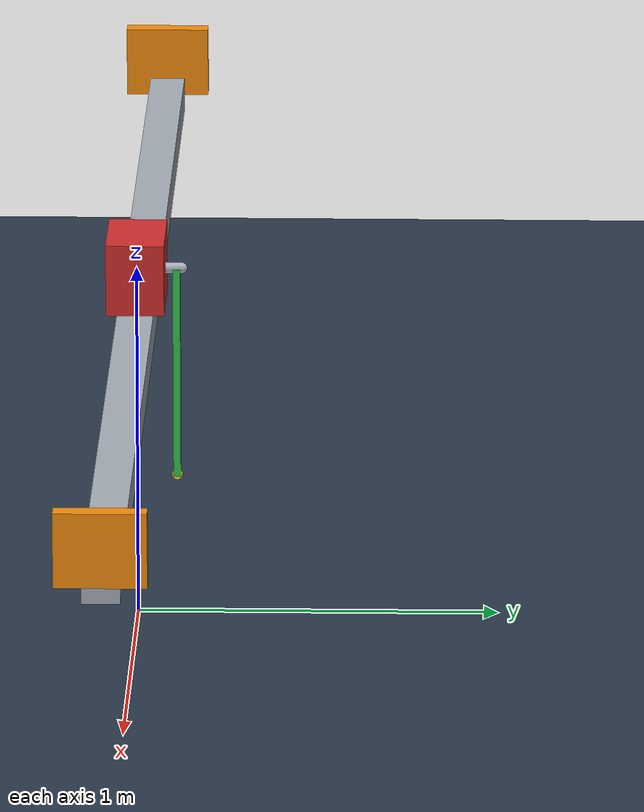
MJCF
<mujoco model="cartpole_single">
  <compiler angle="radian" autolimits="true" inertiafromgeom="false" />
  <option timestep="0.005" gravity="0 0 -9.81" integrator="RK4" />
  <default>
    <geom contype="0" conaffinity="0" />
  </default>
  <visual>
    <headlight diffuse="0.7 0.7 0.7" ambient="0.3 0.3 0.3" specular="0.1 0.1 0.1" />
    <rgba haze="0.15 0.2 0.25 1" />
  </visual>
  <asset>
    <material name="floor_mat" rgba="0.16 0.22 0.28 1" />
    <material name="metal_mat" rgba="0.65 0.68 0.72 1" />
    <material name="cart_mat" rgba="0.82 0.18 0.18 1" />
    <material name="pole_mat" rgba="0.2 0.75 0.3 1" />
    <material name="site_mat" rgba="0.95 0.9 0.15 0.9" />
    <material name="rail_limit_mat" rgba="0.95 0.55 0.05 1" />
  </asset>
  <worldbody>
    <camera name="spectate" pos="0 3 1.4" fovy="90" xyaxes="-1 0 0 0 -0.1240 0.9923" />
    <light diffuse="0.7 0.7 0.7" pos="0 0 3.5" dir="0 0 -1" />
    <geom name="floor" type="plane" size="5 5 0.1" material="floor_mat" />
    <body name="frame">
      <geom name="rail" type="box" pos="0 0 0.85" size="2.2 0.05 0.05" material="metal_mat" />
      <geom name="rail_limit_left" type="box" pos="-2.2 0 0.95" size="0.025 0.12 0.1" material="rail_limit_mat" />
      <geom name="rail_limit_right" type="box" pos="2.2 0 0.95" size="0.025 0.12 0.1" material="rail_limit_mat" />
    </body>
    <body name="cart" pos="0 0 1">
      <joint name="cart_slide" type="slide" axis="1 0 0" range="-2.2 2.2" frictionloss="0.02" damping="0.1" limited="true" />
      <inertial pos="0 0 0" mass="2" diaginertia="0.0333 0.0333 0.0333" />
      <geom name="cart_geom" type="box" size="0.125 0.08 0.1" mass="2.0" material="cart_mat" />
      <site name="cart_center_site" pos="0 0 0" size="0.02" type="sphere" material="site_mat" />
      <geom name="mount_pin" type="capsule" pos="0 0.095 0" axisangle="1 0 0 1.5708" size="0.015 0.03" material="metal_mat" />
      <body name="pole" pos="0 0.11 0" quat="6.12323399574e-17 0 -1 0">
        <joint name="pole_hinge" type="hinge" axis="0 -1 0" frictionloss="0.01" damping="0.03" ref="3.1415926535897931" limited="false" />
        <inertial pos="0 0 0.3" mass="0.7" diaginertia="0.0210233333333 0.0210933333333 0.000116666666667" />
        <site name="pole_hinge_site" pos="0 0 0" size="0.015" type="sphere" material="site_mat" />
        <geom name="pole_geom" type="box" pos="0 0 0.3" size="0.02 0.01 0.3" mass="0.7" material="pole_mat" />
        <site name="pole_tip_site" pos="0 0 0.6" size="0.015" type="sphere" material="site_mat" />
      </body>
    </body>
    <camera name="replay" pos="0 6 1.4" fovy="50" xyaxes="-1 0 0 0 -0.15 0.988686" />
  </worldbody>
  <sensor>
    <jointpos name="cart_position" joint="cart_slide" />
    <jointpos name="pole1_relative_angle" joint="pole_hinge" />
    <jointvel name="cart_velocity" joint="cart_slide" />
    <jointvel name="pole1_relative_velocity" joint="pole_hinge" />
  </sensor>
  <actuator>
    <motor name="cart_motor" joint="cart_slide" gear="1" ctrlrange="-100 100" forcerange="-100 100" />
  </actuator>
</mujoco>
